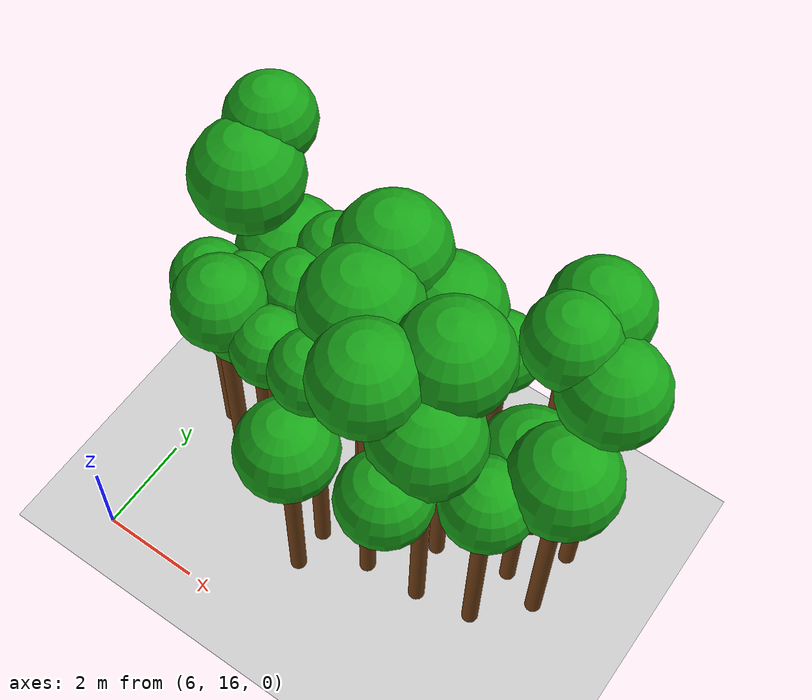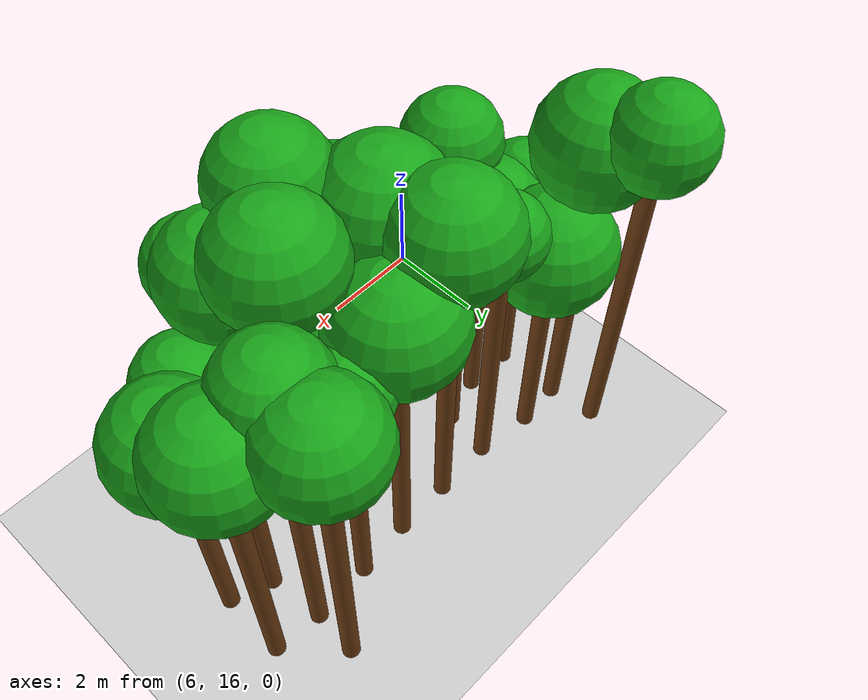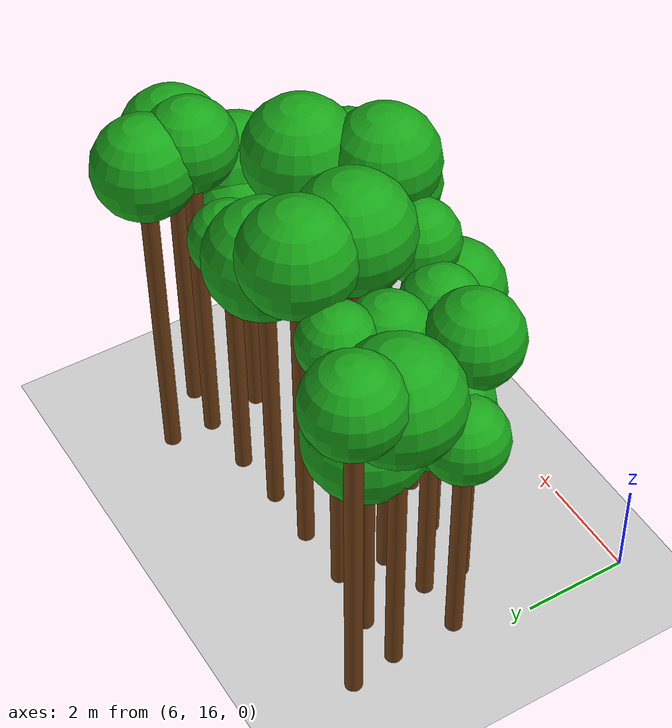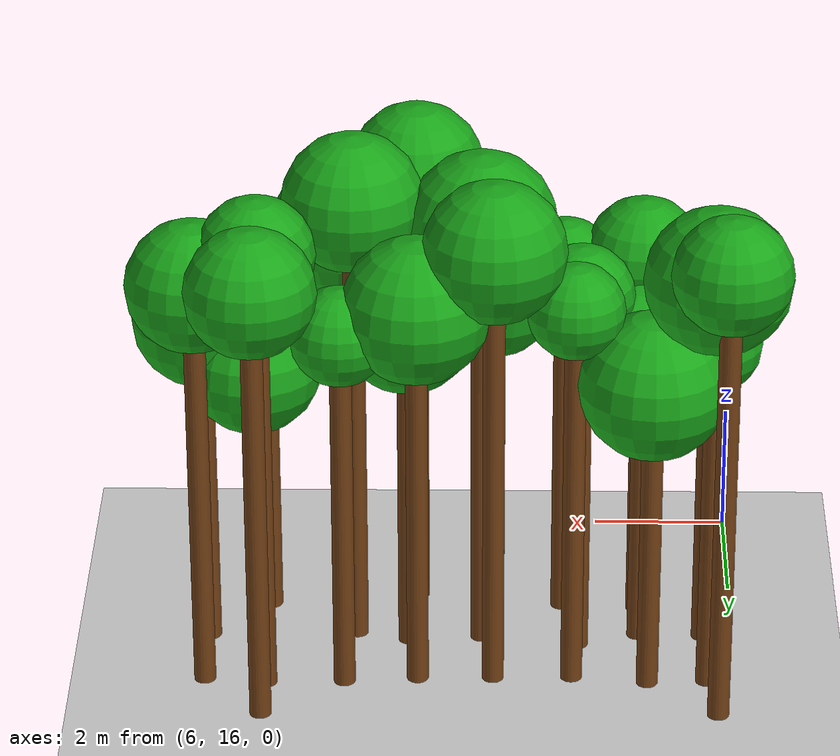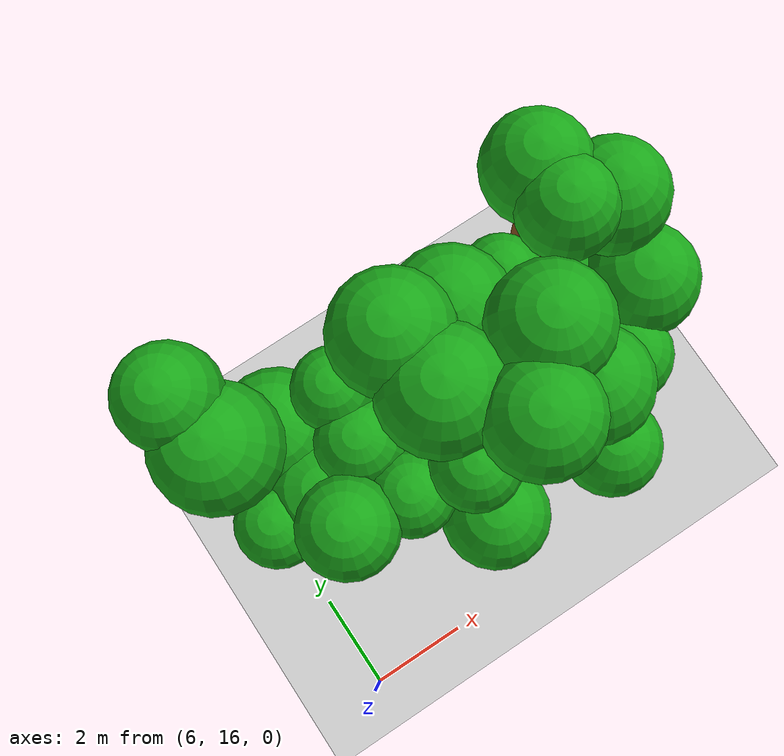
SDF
<sdf version="1.6">
 <world name="forest_world">
  <include><uri>model://sun</uri></include>
  <include><uri>model://ground_plane</uri></include>
  <model name="tree_1837_trunk">
   <static>true</static>
   <pose>6.45 19.36 2.27 0 0 0</pose>
   <link name="link">
    <collision name="collision">
     <geometry><cylinder><radius>0.16</radius><length>4.55</length></cylinder></geometry>
    </collision>
    <visual name="visual">
     <geometry><cylinder><radius>0.16</radius><length>4.55</length></cylinder></geometry>
     <material><ambient>0.35 0.20 0.05 1</ambient><diffuse>0.45 0.25 0.08 1</diffuse></material>
    </visual>
   </link>
  </model>
  <model name="tree_1837_leaf">
   <static>true</static>
   <pose>6.45 19.36 5.00 0 0 0</pose>
   <link name="link">
    <collision name="collision"><geometry><sphere><radius>0.76</radius></sphere></geometry></collision>
    <visual name="visual">
     <geometry><sphere><radius>0.76</radius></sphere></geometry>
     <material><ambient>0.05 0.45 0.05 1</ambient><diffuse>0.10 0.65 0.10 1</diffuse></material>
    </visual>
   </link>
  </model>
  <model name="tree_1838_trunk">
   <static>true</static>
   <pose>6.43 20.64 3.02 0 0 0</pose>
   <link name="link">
    <collision name="collision">
     <geometry><cylinder><radius>0.16</radius><length>6.03</length></cylinder></geometry>
    </collision>
    <visual name="visual">
     <geometry><cylinder><radius>0.16</radius><length>6.03</length></cylinder></geometry>
     <material><ambient>0.35 0.20 0.05 1</ambient><diffuse>0.45 0.25 0.08 1</diffuse></material>
    </visual>
   </link>
  </model>
  <model name="tree_1838_leaf">
   <static>true</static>
   <pose>6.43 20.64 6.67 0 0 0</pose>
   <link name="link">
    <collision name="collision"><geometry><sphere><radius>1.07</radius></sphere></geometry></collision>
    <visual name="visual">
     <geometry><sphere><radius>1.07</radius></sphere></geometry>
     <material><ambient>0.05 0.45 0.05 1</ambient><diffuse>0.10 0.65 0.10 1</diffuse></material>
    </visual>
   </link>
  </model>
  <model name="tree_1839_trunk">
   <static>true</static>
   <pose>6.29 21.55 3.35 0 0 0</pose>
   <link name="link">
    <collision name="collision">
     <geometry><cylinder><radius>0.16</radius><length>6.70</length></cylinder></geometry>
    </collision>
    <visual name="visual">
     <geometry><cylinder><radius>0.16</radius><length>6.70</length></cylinder></geometry>
     <material><ambient>0.35 0.20 0.05 1</ambient><diffuse>0.45 0.25 0.08 1</diffuse></material>
    </visual>
   </link>
  </model>
  <model name="tree_1839_leaf">
   <static>true</static>
   <pose>6.29 21.55 7.21 0 0 0</pose>
   <link name="link">
    <collision name="collision"><geometry><sphere><radius>0.86</radius></sphere></geometry></collision>
    <visual name="visual">
     <geometry><sphere><radius>0.86</radius></sphere></geometry>
     <material><ambient>0.05 0.45 0.05 1</ambient><diffuse>0.10 0.65 0.10 1</diffuse></material>
    </visual>
   </link>
  </model>
  <model name="tree_1891_trunk">
   <static>true</static>
   <pose>7.42 18.57 2.76 0 0 0</pose>
   <link name="link">
    <collision name="collision">
     <geometry><cylinder><radius>0.16</radius><length>5.52</length></cylinder></geometry>
    </collision>
    <visual name="visual">
     <geometry><cylinder><radius>0.16</radius><length>5.52</length></cylinder></geometry>
     <material><ambient>0.35 0.20 0.05 1</ambient><diffuse>0.45 0.25 0.08 1</diffuse></material>
    </visual>
   </link>
  </model>
  <model name="tree_1891_leaf">
   <static>true</static>
   <pose>7.42 18.57 6.04 0 0 0</pose>
   <link name="link">
    <collision name="collision"><geometry><sphere><radius>0.86</radius></sphere></geometry></collision>
    <visual name="visual">
     <geometry><sphere><radius>0.86</radius></sphere></geometry>
     <material><ambient>0.05 0.45 0.05 1</ambient><diffuse>0.10 0.65 0.10 1</diffuse></material>
    </visual>
   </link>
  </model>
  <model name="tree_1892_trunk">
   <static>true</static>
   <pose>7.42 19.35 2.12 0 0 0</pose>
   <link name="link">
    <collision name="collision">
     <geometry><cylinder><radius>0.16</radius><length>4.23</length></cylinder></geometry>
    </collision>
    <visual name="visual">
     <geometry><cylinder><radius>0.16</radius><length>4.23</length></cylinder></geometry>
     <material><ambient>0.35 0.20 0.05 1</ambient><diffuse>0.45 0.25 0.08 1</diffuse></material>
    </visual>
   </link>
  </model>
  <model name="tree_1892_leaf">
   <static>true</static>
   <pose>7.42 19.35 4.88 0 0 0</pose>
   <link name="link">
    <collision name="collision"><geometry><sphere><radius>1.08</radius></sphere></geometry></collision>
    <visual name="visual">
     <geometry><sphere><radius>1.08</radius></sphere></geometry>
     <material><ambient>0.05 0.45 0.05 1</ambient><diffuse>0.10 0.65 0.10 1</diffuse></material>
    </visual>
   </link>
  </model>
  <model name="tree_1893_trunk">
   <static>true</static>
   <pose>7.31 20.69 2.18 0 0 0</pose>
   <link name="link">
    <collision name="collision">
     <geometry><cylinder><radius>0.16</radius><length>4.35</length></cylinder></geometry>
    </collision>
    <visual name="visual">
     <geometry><cylinder><radius>0.16</radius><length>4.35</length></cylinder></geometry>
     <material><ambient>0.35 0.20 0.05 1</ambient><diffuse>0.45 0.25 0.08 1</diffuse></material>
    </visual>
   </link>
  </model>
  <model name="tree_1893_leaf">
   <static>true</static>
   <pose>7.31 20.69 5.01 0 0 0</pose>
   <link name="link">
    <collision name="collision"><geometry><sphere><radius>1.09</radius></sphere></geometry></collision>
    <visual name="visual">
     <geometry><sphere><radius>1.09</radius></sphere></geometry>
     <material><ambient>0.05 0.45 0.05 1</ambient><diffuse>0.10 0.65 0.10 1</diffuse></material>
    </visual>
   </link>
  </model>
  <model name="tree_1946_trunk">
   <static>true</static>
   <pose>8.56 18.48 2.67 0 0 0</pose>
   <link name="link">
    <collision name="collision">
     <geometry><cylinder><radius>0.16</radius><length>5.35</length></cylinder></geometry>
    </collision>
    <visual name="visual">
     <geometry><cylinder><radius>0.16</radius><length>5.35</length></cylinder></geometry>
     <material><ambient>0.35 0.20 0.05 1</ambient><diffuse>0.45 0.25 0.08 1</diffuse></material>
    </visual>
   </link>
  </model>
  <model name="tree_1946_leaf">
   <static>true</static>
   <pose>8.56 18.48 5.79 0 0 0</pose>
   <link name="link">
    <collision name="collision"><geometry><sphere><radius>0.73</radius></sphere></geometry></collision>
    <visual name="visual">
     <geometry><sphere><radius>0.73</radius></sphere></geometry>
     <material><ambient>0.05 0.45 0.05 1</ambient><diffuse>0.10 0.65 0.10 1</diffuse></material>
    </visual>
   </link>
  </model>
  <model name="tree_1947_trunk">
   <static>true</static>
   <pose>8.33 19.63 2.72 0 0 0</pose>
   <link name="link">
    <collision name="collision">
     <geometry><cylinder><radius>0.16</radius><length>5.43</length></cylinder></geometry>
    </collision>
    <visual name="visual">
     <geometry><cylinder><radius>0.16</radius><length>5.43</length></cylinder></geometry>
     <material><ambient>0.35 0.20 0.05 1</ambient><diffuse>0.45 0.25 0.08 1</diffuse></material>
    </visual>
   </link>
  </model>
  <model name="tree_1947_leaf">
   <static>true</static>
   <pose>8.33 19.63 5.89 0 0 0</pose>
   <link name="link">
    <collision name="collision"><geometry><sphere><radius>0.77</radius></sphere></geometry></collision>
    <visual name="visual">
     <geometry><sphere><radius>0.77</radius></sphere></geometry>
     <material><ambient>0.05 0.45 0.05 1</ambient><diffuse>0.10 0.65 0.10 1</diffuse></material>
    </visual>
   </link>
  </model>
  <model name="tree_1948_trunk">
   <static>true</static>
   <pose>8.43 20.54 2.85 0 0 0</pose>
   <link name="link">
    <collision name="collision">
     <geometry><cylinder><radius>0.16</radius><length>5.70</length></cylinder></geometry>
    </collision>
    <visual name="visual">
     <geometry><cylinder><radius>0.16</radius><length>5.70</length></cylinder></geometry>
     <material><ambient>0.35 0.20 0.05 1</ambient><diffuse>0.45 0.25 0.08 1</diffuse></material>
    </visual>
   </link>
  </model>
  <model name="tree_1948_leaf">
   <static>true</static>
   <pose>8.43 20.54 6.12 0 0 0</pose>
   <link name="link">
    <collision name="collision"><geometry><sphere><radius>0.71</radius></sphere></geometry></collision>
    <visual name="visual">
     <geometry><sphere><radius>0.71</radius></sphere></geometry>
     <material><ambient>0.05 0.45 0.05 1</ambient><diffuse>0.10 0.65 0.10 1</diffuse></material>
    </visual>
   </link>
  </model>
  <model name="tree_2000_trunk">
   <static>true</static>
   <pose>9.59 17.47 2.11 0 0 0</pose>
   <link name="link">
    <collision name="collision">
     <geometry><cylinder><radius>0.16</radius><length>4.22</length></cylinder></geometry>
    </collision>
    <visual name="visual">
     <geometry><cylinder><radius>0.16</radius><length>4.22</length></cylinder></geometry>
     <material><ambient>0.35 0.20 0.05 1</ambient><diffuse>0.45 0.25 0.08 1</diffuse></material>
    </visual>
   </link>
  </model>
  <model name="tree_2000_leaf">
   <static>true</static>
   <pose>9.59 17.47 4.79 0 0 0</pose>
   <link name="link">
    <collision name="collision"><geometry><sphere><radius>0.94</radius></sphere></geometry></collision>
    <visual name="visual">
     <geometry><sphere><radius>0.94</radius></sphere></geometry>
     <material><ambient>0.05 0.45 0.05 1</ambient><diffuse>0.10 0.65 0.10 1</diffuse></material>
    </visual>
   </link>
  </model>
  <model name="tree_2001_trunk">
   <static>true</static>
   <pose>9.61 18.25 2.93 0 0 0</pose>
   <link name="link">
    <collision name="collision">
     <geometry><cylinder><radius>0.16</radius><length>5.86</length></cylinder></geometry>
    </collision>
    <visual name="visual">
     <geometry><cylinder><radius>0.16</radius><length>5.86</length></cylinder></geometry>
     <material><ambient>0.35 0.20 0.05 1</ambient><diffuse>0.45 0.25 0.08 1</diffuse></material>
    </visual>
   </link>
  </model>
  <model name="tree_2001_leaf">
   <static>true</static>
   <pose>9.61 18.25 6.31 0 0 0</pose>
   <link name="link">
    <collision name="collision"><geometry><sphere><radius>0.75</radius></sphere></geometry></collision>
    <visual name="visual">
     <geometry><sphere><radius>0.75</radius></sphere></geometry>
     <material><ambient>0.05 0.45 0.05 1</ambient><diffuse>0.10 0.65 0.10 1</diffuse></material>
    </visual>
   </link>
  </model>
  <model name="tree_2002_trunk">
   <static>true</static>
   <pose>9.77 19.43 3.14 0 0 0</pose>
   <link name="link">
    <collision name="collision">
     <geometry><cylinder><radius>0.16</radius><length>6.27</length></cylinder></geometry>
    </collision>
    <visual name="visual">
     <geometry><cylinder><radius>0.16</radius><length>6.27</length></cylinder></geometry>
     <material><ambient>0.35 0.20 0.05 1</ambient><diffuse>0.45 0.25 0.08 1</diffuse></material>
    </visual>
   </link>
  </model>
  <model name="tree_2002_leaf">
   <static>true</static>
   <pose>9.77 19.43 6.93 0 0 0</pose>
   <link name="link">
    <collision name="collision"><geometry><sphere><radius>1.09</radius></sphere></geometry></collision>
    <visual name="visual">
     <geometry><sphere><radius>1.09</radius></sphere></geometry>
     <material><ambient>0.05 0.45 0.05 1</ambient><diffuse>0.10 0.65 0.10 1</diffuse></material>
    </visual>
   </link>
  </model>
  <model name="tree_2003_trunk">
   <static>true</static>
   <pose>9.59 20.57 3.22 0 0 0</pose>
   <link name="link">
    <collision name="collision">
     <geometry><cylinder><radius>0.16</radius><length>6.44</length></cylinder></geometry>
    </collision>
    <visual name="visual">
     <geometry><cylinder><radius>0.16</radius><length>6.44</length></cylinder></geometry>
     <material><ambient>0.35 0.20 0.05 1</ambient><diffuse>0.45 0.25 0.08 1</diffuse></material>
    </visual>
   </link>
  </model>
  <model name="tree_2003_leaf">
   <static>true</static>
   <pose>9.59 20.57 7.06 0 0 0</pose>
   <link name="link">
    <collision name="collision"><geometry><sphere><radius>1.04</radius></sphere></geometry></collision>
    <visual name="visual">
     <geometry><sphere><radius>1.04</radius></sphere></geometry>
     <material><ambient>0.05 0.45 0.05 1</ambient><diffuse>0.10 0.65 0.10 1</diffuse></material>
    </visual>
   </link>
  </model>
  <model name="tree_2056_trunk">
   <static>true</static>
   <pose>10.73 18.22 3.32 0 0 0</pose>
   <link name="link">
    <collision name="collision">
     <geometry><cylinder><radius>0.16</radius><length>6.64</length></cylinder></geometry>
    </collision>
    <visual name="visual">
     <geometry><cylinder><radius>0.16</radius><length>6.64</length></cylinder></geometry>
     <material><ambient>0.35 0.20 0.05 1</ambient><diffuse>0.45 0.25 0.08 1</diffuse></material>
    </visual>
   </link>
  </model>
  <model name="tree_2056_leaf">
   <static>true</static>
   <pose>10.73 18.22 7.23 0 0 0</pose>
   <link name="link">
    <collision name="collision"><geometry><sphere><radius>0.99</radius></sphere></geometry></collision>
    <visual name="visual">
     <geometry><sphere><radius>0.99</radius></sphere></geometry>
     <material><ambient>0.05 0.45 0.05 1</ambient><diffuse>0.10 0.65 0.10 1</diffuse></material>
    </visual>
   </link>
  </model>
  <model name="tree_2057_trunk">
   <static>true</static>
   <pose>10.85 19.52 2.38 0 0 0</pose>
   <link name="link">
    <collision name="collision">
     <geometry><cylinder><radius>0.16</radius><length>4.75</length></cylinder></geometry>
    </collision>
    <visual name="visual">
     <geometry><cylinder><radius>0.16</radius><length>4.75</length></cylinder></geometry>
     <material><ambient>0.35 0.20 0.05 1</ambient><diffuse>0.45 0.25 0.08 1</diffuse></material>
    </visual>
   </link>
  </model>
  <model name="tree_2057_leaf">
   <static>true</static>
   <pose>10.85 19.52 5.37 0 0 0</pose>
   <link name="link">
    <collision name="collision"><geometry><sphere><radius>1.03</radius></sphere></geometry></collision>
    <visual name="visual">
     <geometry><sphere><radius>1.03</radius></sphere></geometry>
     <material><ambient>0.05 0.45 0.05 1</ambient><diffuse>0.10 0.65 0.10 1</diffuse></material>
    </visual>
   </link>
  </model>
  <model name="tree_2058_trunk">
   <static>true</static>
   <pose>10.70 20.59 2.75 0 0 0</pose>
   <link name="link">
    <collision name="collision">
     <geometry><cylinder><radius>0.16</radius><length>5.50</length></cylinder></geometry>
    </collision>
    <visual name="visual">
     <geometry><cylinder><radius>0.16</radius><length>5.50</length></cylinder></geometry>
     <material><ambient>0.35 0.20 0.05 1</ambient><diffuse>0.45 0.25 0.08 1</diffuse></material>
    </visual>
   </link>
  </model>
  <model name="tree_2058_leaf">
   <static>true</static>
   <pose>10.70 20.59 6.15 0 0 0</pose>
   <link name="link">
    <collision name="collision"><geometry><sphere><radius>1.08</radius></sphere></geometry></collision>
    <visual name="visual">
     <geometry><sphere><radius>1.08</radius></sphere></geometry>
     <material><ambient>0.05 0.45 0.05 1</ambient><diffuse>0.10 0.65 0.10 1</diffuse></material>
    </visual>
   </link>
  </model>
  <model name="tree_2110_leaf">
   <static>true</static>
   <pose>11.70 17.34 5.63 0 0 0</pose>
   <link name="link">
    <collision name="collision"><geometry><sphere><radius>0.84</radius></sphere></geometry></collision>
    <visual name="visual">
     <geometry><sphere><radius>0.84</radius></sphere></geometry>
     <material><ambient>0.05 0.45 0.05 1</ambient><diffuse>0.10 0.65 0.10 1</diffuse></material>
    </visual>
   </link>
  </model>
  <model name="tree_2111_trunk">
   <static>true</static>
   <pose>11.85 18.29 2.87 0 0 0</pose>
   <link name="link">
    <collision name="collision">
     <geometry><cylinder><radius>0.16</radius><length>5.73</length></cylinder></geometry>
    </collision>
    <visual name="visual">
     <geometry><cylinder><radius>0.16</radius><length>5.73</length></cylinder></geometry>
     <material><ambient>0.35 0.20 0.05 1</ambient><diffuse>0.45 0.25 0.08 1</diffuse></material>
    </visual>
   </link>
  </model>
  <model name="tree_2111_leaf">
   <static>true</static>
   <pose>11.85 18.29 6.34 0 0 0</pose>
   <link name="link">
    <collision name="collision"><geometry><sphere><radius>1.01</radius></sphere></geometry></collision>
    <visual name="visual">
     <geometry><sphere><radius>1.01</radius></sphere></geometry>
     <material><ambient>0.05 0.45 0.05 1</ambient><diffuse>0.10 0.65 0.10 1</diffuse></material>
    </visual>
   </link>
  </model>
  <model name="tree_2112_trunk">
   <static>true</static>
   <pose>11.63 19.32 3.30 0 0 0</pose>
   <link name="link">
    <collision name="collision">
     <geometry><cylinder><radius>0.16</radius><length>6.60</length></cylinder></geometry>
    </collision>
    <visual name="visual">
     <geometry><cylinder><radius>0.16</radius><length>6.60</length></cylinder></geometry>
     <material><ambient>0.35 0.20 0.05 1</ambient><diffuse>0.45 0.25 0.08 1</diffuse></material>
    </visual>
   </link>
  </model>
  <model name="tree_2112_leaf">
   <static>true</static>
   <pose>11.63 19.32 7.22 0 0 0</pose>
   <link name="link">
    <collision name="collision"><geometry><sphere><radius>1.03</radius></sphere></geometry></collision>
    <visual name="visual">
     <geometry><sphere><radius>1.03</radius></sphere></geometry>
     <material><ambient>0.05 0.45 0.05 1</ambient><diffuse>0.10 0.65 0.10 1</diffuse></material>
    </visual>
   </link>
  </model>
  <model name="tree_2113_trunk">
   <static>true</static>
   <pose>11.78 20.68 2.66 0 0 0</pose>
   <link name="link">
    <collision name="collision">
     <geometry><cylinder><radius>0.16</radius><length>5.33</length></cylinder></geometry>
    </collision>
    <visual name="visual">
     <geometry><cylinder><radius>0.16</radius><length>5.33</length></cylinder></geometry>
     <material><ambient>0.35 0.20 0.05 1</ambient><diffuse>0.45 0.25 0.08 1</diffuse></material>
    </visual>
   </link>
  </model>
  <model name="tree_2113_leaf">
   <static>true</static>
   <pose>11.78 20.68 5.77 0 0 0</pose>
   <link name="link">
    <collision name="collision"><geometry><sphere><radius>0.73</radius></sphere></geometry></collision>
    <visual name="visual">
     <geometry><sphere><radius>0.73</radius></sphere></geometry>
     <material><ambient>0.05 0.45 0.05 1</ambient><diffuse>0.10 0.65 0.10 1</diffuse></material>
    </visual>
   </link>
  </model>
  <model name="tree_2166_trunk">
   <static>true</static>
   <pose>12.96 18.50 2.24 0 0 0</pose>
   <link name="link">
    <collision name="collision">
     <geometry><cylinder><radius>0.16</radius><length>4.47</length></cylinder></geometry>
    </collision>
    <visual name="visual">
     <geometry><cylinder><radius>0.16</radius><length>4.47</length></cylinder></geometry>
     <material><ambient>0.35 0.20 0.05 1</ambient><diffuse>0.45 0.25 0.08 1</diffuse></material>
    </visual>
   </link>
  </model>
  <model name="tree_2166_leaf">
   <static>true</static>
   <pose>12.96 18.50 4.98 0 0 0</pose>
   <link name="link">
    <collision name="collision"><geometry><sphere><radius>0.84</radius></sphere></geometry></collision>
    <visual name="visual">
     <geometry><sphere><radius>0.84</radius></sphere></geometry>
     <material><ambient>0.05 0.45 0.05 1</ambient><diffuse>0.10 0.65 0.10 1</diffuse></material>
    </visual>
   </link>
  </model>
  <model name="tree_2167_trunk">
   <static>true</static>
   <pose>13.08 19.67 2.08 0 0 0</pose>
   <link name="link">
    <collision name="collision">
     <geometry><cylinder><radius>0.16</radius><length>4.15</length></cylinder></geometry>
    </collision>
    <visual name="visual">
     <geometry><cylinder><radius>0.16</radius><length>4.15</length></cylinder></geometry>
     <material><ambient>0.35 0.20 0.05 1</ambient><diffuse>0.45 0.25 0.08 1</diffuse></material>
    </visual>
   </link>
  </model>
  <model name="tree_2167_leaf">
   <static>true</static>
   <pose>13.08 19.67 4.75 0 0 0</pose>
   <link name="link">
    <collision name="collision"><geometry><sphere><radius>1.00</radius></sphere></geometry></collision>
    <visual name="visual">
     <geometry><sphere><radius>1.00</radius></sphere></geometry>
     <material><ambient>0.05 0.45 0.05 1</ambient><diffuse>0.10 0.65 0.10 1</diffuse></material>
    </visual>
   </link>
  </model>
  <model name="tree_2168_trunk">
   <static>true</static>
   <pose>12.94 20.74 3.29 0 0 0</pose>
   <link name="link">
    <collision name="collision">
     <geometry><cylinder><radius>0.16</radius><length>6.58</length></cylinder></geometry>
    </collision>
    <visual name="visual">
     <geometry><cylinder><radius>0.16</radius><length>6.58</length></cylinder></geometry>
     <material><ambient>0.35 0.20 0.05 1</ambient><diffuse>0.45 0.25 0.08 1</diffuse></material>
    </visual>
   </link>
  </model>
  <model name="tree_2168_leaf">
   <static>true</static>
   <pose>12.94 20.74 7.09 0 0 0</pose>
   <link name="link">
    <collision name="collision"><geometry><sphere><radius>0.85</radius></sphere></geometry></collision>
    <visual name="visual">
     <geometry><sphere><radius>0.85</radius></sphere></geometry>
     <material><ambient>0.05 0.45 0.05 1</ambient><diffuse>0.10 0.65 0.10 1</diffuse></material>
    </visual>
   </link>
  </model>
  <model name="tree_2169_trunk">
   <static>true</static>
   <pose>12.98 21.59 3.18 0 0 0</pose>
   <link name="link">
    <collision name="collision">
     <geometry><cylinder><radius>0.16</radius><length>6.35</length></cylinder></geometry>
    </collision>
    <visual name="visual">
     <geometry><cylinder><radius>0.16</radius><length>6.35</length></cylinder></geometry>
     <material><ambient>0.35 0.20 0.05 1</ambient><diffuse>0.45 0.25 0.08 1</diffuse></material>
    </visual>
   </link>
  </model>
  <model name="tree_2169_leaf">
   <static>true</static>
   <pose>12.98 21.59 6.92 0 0 0</pose>
   <link name="link">
    <collision name="collision"><geometry><sphere><radius>0.94</radius></sphere></geometry></collision>
    <visual name="visual">
     <geometry><sphere><radius>0.94</radius></sphere></geometry>
     <material><ambient>0.05 0.45 0.05 1</ambient><diffuse>0.10 0.65 0.10 1</diffuse></material>
    </visual>
   </link>
  </model>
  <model name="tree_2222_trunk">
   <static>true</static>
   <pose>13.84 19.40 2.38 0 0 0</pose>
   <link name="link">
    <collision name="collision">
     <geometry><cylinder><radius>0.16</radius><length>4.77</length></cylinder></geometry>
    </collision>
    <visual name="visual">
     <geometry><cylinder><radius>0.16</radius><length>4.77</length></cylinder></geometry>
     <material><ambient>0.35 0.20 0.05 1</ambient><diffuse>0.45 0.25 0.08 1</diffuse></material>
    </visual>
   </link>
  </model>
  <model name="tree_2222_leaf">
   <static>true</static>
   <pose>13.84 19.40 5.38 0 0 0</pose>
   <link name="link">
    <collision name="collision"><geometry><sphere><radius>1.01</radius></sphere></geometry></collision>
    <visual name="visual">
     <geometry><sphere><radius>1.01</radius></sphere></geometry>
     <material><ambient>0.05 0.45 0.05 1</ambient><diffuse>0.10 0.65 0.10 1</diffuse></material>
    </visual>
   </link>
  </model>
  <model name="tree_2223_trunk">
   <static>true</static>
   <pose>13.85 20.64 2.98 0 0 0</pose>
   <link name="link">
    <collision name="collision">
     <geometry><cylinder><radius>0.16</radius><length>5.96</length></cylinder></geometry>
    </collision>
    <visual name="visual">
     <geometry><cylinder><radius>0.16</radius><length>5.96</length></cylinder></geometry>
     <material><ambient>0.35 0.20 0.05 1</ambient><diffuse>0.45 0.25 0.08 1</diffuse></material>
    </visual>
   </link>
  </model>
  <model name="tree_2223_leaf">
   <static>true</static>
   <pose>13.85 20.64 6.54 0 0 0</pose>
   <link name="link">
    <collision name="collision"><geometry><sphere><radius>0.97</radius></sphere></geometry></collision>
    <visual name="visual">
     <geometry><sphere><radius>0.97</radius></sphere></geometry>
     <material><ambient>0.05 0.45 0.05 1</ambient><diffuse>0.10 0.65 0.10 1</diffuse></material>
    </visual>
   </link>
  </model>
 </world>
</sdf>
